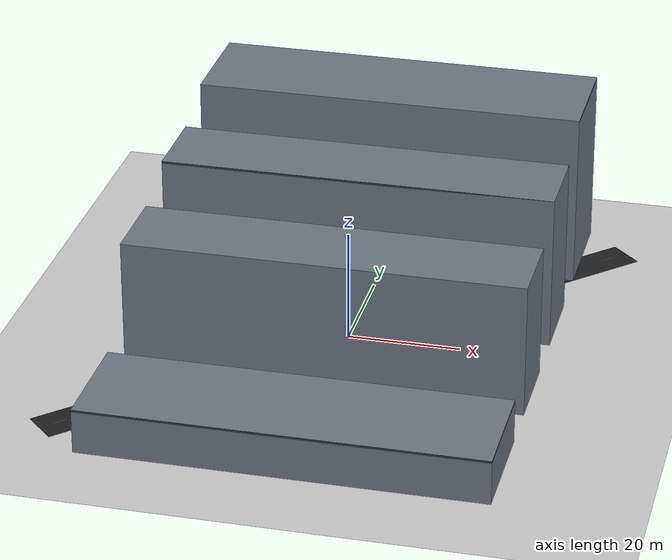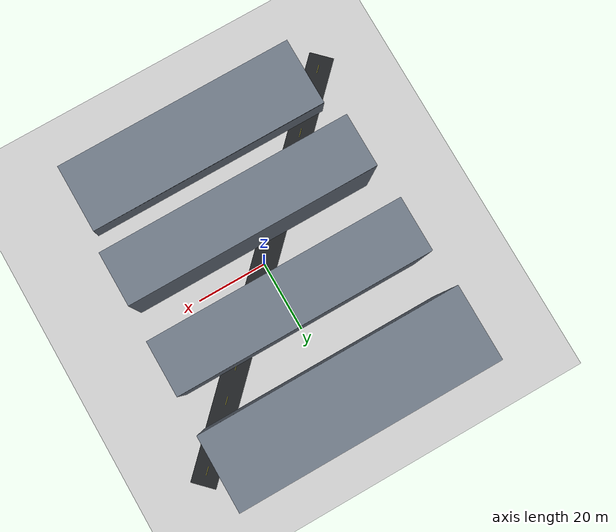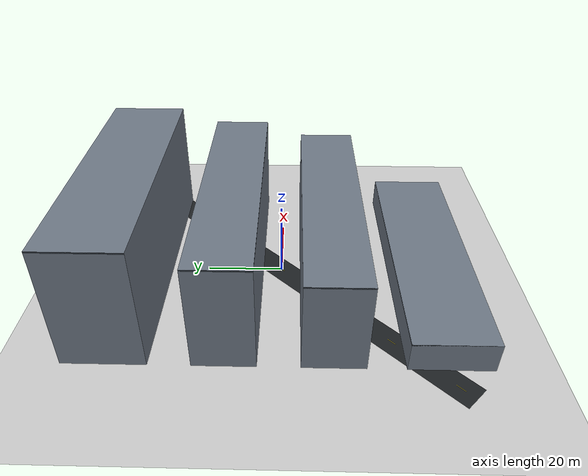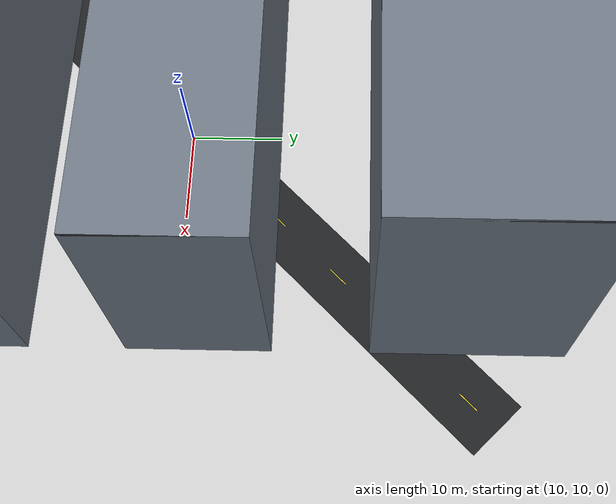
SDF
<?xml version="1.0"?>
<sdf version="1.6"><world name="logistics_1_high_rise_delivery">
  <physics name="default_physics" type="ode"><max_step_size>0.004</max_step_size><real_time_factor>1</real_time_factor><real_time_update_rate>250</real_time_update_rate><magnetic_field>6.0e-6 2.3e-5 -4.2e-5</magnetic_field></physics>
  <gravity>0 0 -9.8066</gravity>
  <include><uri>model://sun</uri></include>
  <include><uri>model://ground_plane</uri></include>
  <spherical_coordinates><surface_model>EARTH_WGS84</surface_model><latitude_deg>47.397742</latitude_deg><longitude_deg>8.545594</longitude_deg><elevation>488</elevation><heading_deg>0</heading_deg></spherical_coordinates>
<model name="service_road"><static>true</static><pose>0.000 0.000 0.012 0.000 0.000 0.785</pose><link name="link"><visual name="visual"><cast_shadows>false</cast_shadows><geometry><box><size>121.137 7.0 0.02</size></box></geometry><material><ambient>0.12 0.13 0.14 1</ambient><diffuse>0.12 0.13 0.14 1</diffuse></material></visual></link></model>
<model name="road_mark_00"><static>true</static><pose>-40.000 -40.000 0.026 0.000 0.000 0.785</pose><link name="link"><visual name="visual"><cast_shadows>false</cast_shadows><geometry><box><size>2.4 0.12 0.012</size></box></geometry><material><ambient>0.92 0.84 0.18 1</ambient><diffuse>0.92 0.84 0.18 1</diffuse></material></visual></link></model>
<model name="road_mark_01"><static>true</static><pose>-33.333 -33.333 0.026 0.000 0.000 0.785</pose><link name="link"><visual name="visual"><cast_shadows>false</cast_shadows><geometry><box><size>2.4 0.12 0.012</size></box></geometry><material><ambient>0.92 0.84 0.18 1</ambient><diffuse>0.92 0.84 0.18 1</diffuse></material></visual></link></model>
<model name="road_mark_02"><static>true</static><pose>-26.667 -26.667 0.026 0.000 0.000 0.785</pose><link name="link"><visual name="visual"><cast_shadows>false</cast_shadows><geometry><box><size>2.4 0.12 0.012</size></box></geometry><material><ambient>0.92 0.84 0.18 1</ambient><diffuse>0.92 0.84 0.18 1</diffuse></material></visual></link></model>
<model name="road_mark_03"><static>true</static><pose>-20.000 -20.000 0.026 0.000 0.000 0.785</pose><link name="link"><visual name="visual"><cast_shadows>false</cast_shadows><geometry><box><size>2.4 0.12 0.012</size></box></geometry><material><ambient>0.92 0.84 0.18 1</ambient><diffuse>0.92 0.84 0.18 1</diffuse></material></visual></link></model>
<model name="road_mark_04"><static>true</static><pose>-13.333 -13.333 0.026 0.000 0.000 0.785</pose><link name="link"><visual name="visual"><cast_shadows>false</cast_shadows><geometry><box><size>2.4 0.12 0.012</size></box></geometry><material><ambient>0.92 0.84 0.18 1</ambient><diffuse>0.92 0.84 0.18 1</diffuse></material></visual></link></model>
<model name="road_mark_05"><static>true</static><pose>-6.667 -6.667 0.026 0.000 0.000 0.785</pose><link name="link"><visual name="visual"><cast_shadows>false</cast_shadows><geometry><box><size>2.4 0.12 0.012</size></box></geometry><material><ambient>0.92 0.84 0.18 1</ambient><diffuse>0.92 0.84 0.18 1</diffuse></material></visual></link></model>
<model name="road_mark_06"><static>true</static><pose>0.000 0.000 0.026 0.000 0.000 0.785</pose><link name="link"><visual name="visual"><cast_shadows>false</cast_shadows><geometry><box><size>2.4 0.12 0.012</size></box></geometry><material><ambient>0.92 0.84 0.18 1</ambient><diffuse>0.92 0.84 0.18 1</diffuse></material></visual></link></model>
<model name="road_mark_07"><static>true</static><pose>6.667 6.667 0.026 0.000 0.000 0.785</pose><link name="link"><visual name="visual"><cast_shadows>false</cast_shadows><geometry><box><size>2.4 0.12 0.012</size></box></geometry><material><ambient>0.92 0.84 0.18 1</ambient><diffuse>0.92 0.84 0.18 1</diffuse></material></visual></link></model>
<model name="road_mark_08"><static>true</static><pose>13.333 13.333 0.026 0.000 0.000 0.785</pose><link name="link"><visual name="visual"><cast_shadows>false</cast_shadows><geometry><box><size>2.4 0.12 0.012</size></box></geometry><material><ambient>0.92 0.84 0.18 1</ambient><diffuse>0.92 0.84 0.18 1</diffuse></material></visual></link></model>
<model name="road_mark_09"><static>true</static><pose>20.000 20.000 0.026 0.000 0.000 0.785</pose><link name="link"><visual name="visual"><cast_shadows>false</cast_shadows><geometry><box><size>2.4 0.12 0.012</size></box></geometry><material><ambient>0.92 0.84 0.18 1</ambient><diffuse>0.92 0.84 0.18 1</diffuse></material></visual></link></model>
<model name="road_mark_10"><static>true</static><pose>26.667 26.667 0.026 0.000 0.000 0.785</pose><link name="link"><visual name="visual"><cast_shadows>false</cast_shadows><geometry><box><size>2.4 0.12 0.012</size></box></geometry><material><ambient>0.92 0.84 0.18 1</ambient><diffuse>0.92 0.84 0.18 1</diffuse></material></visual></link></model>
<model name="road_mark_11"><static>true</static><pose>33.333 33.333 0.026 0.000 0.000 0.785</pose><link name="link"><visual name="visual"><cast_shadows>false</cast_shadows><geometry><box><size>2.4 0.12 0.012</size></box></geometry><material><ambient>0.92 0.84 0.18 1</ambient><diffuse>0.92 0.84 0.18 1</diffuse></material></visual></link></model>
<model name="road_mark_12"><static>true</static><pose>40.000 40.000 0.026 0.000 0.000 0.785</pose><link name="link"><visual name="visual"><cast_shadows>false</cast_shadows><geometry><box><size>2.4 0.12 0.012</size></box></geometry><material><ambient>0.92 0.84 0.18 1</ambient><diffuse>0.92 0.84 0.18 1</diffuse></material></visual></link></model>
<model name="obstacle_00_tower_a"><static>true</static><pose>0.000 40.000 16.000 0 0 0</pose><link name="link"><collision name="collision"><geometry><box><size>70.000 20.000 32.000</size></box></geometry></collision><visual name="visual"><geometry><box><size>70.000 20.000 32.000</size></box></geometry><material><ambient>0.43 0.47 0.52 1</ambient><diffuse>0.43 0.47 0.52 1</diffuse></material></visual></link></model>
<model name="obstacle_00_tower_a_roof"><static>true</static><pose>0.000 40.000 31.820 0.000 0.000 0.000</pose><link name="link"><visual name="visual"><cast_shadows>false</cast_shadows><geometry><box><size>70.000 20.000 0.360</size></box></geometry><material><ambient>0.20 0.23 0.27 1</ambient><diffuse>0.20 0.23 0.27 1</diffuse></material></visual></link></model>
<model name="obstacle_01_tower_b"><static>true</static><pose>0.000 12.500 14.000 0 0 0</pose><link name="link"><collision name="collision"><geometry><box><size>70.000 15.000 28.000</size></box></geometry></collision><visual name="visual"><geometry><box><size>70.000 15.000 28.000</size></box></geometry><material><ambient>0.43 0.47 0.52 1</ambient><diffuse>0.43 0.47 0.52 1</diffuse></material></visual></link></model>
<model name="obstacle_01_tower_b_roof"><static>true</static><pose>0.000 12.500 27.820 0.000 0.000 0.000</pose><link name="link"><visual name="visual"><cast_shadows>false</cast_shadows><geometry><box><size>70.000 15.000 0.360</size></box></geometry><material><ambient>0.20 0.23 0.27 1</ambient><diffuse>0.20 0.23 0.27 1</diffuse></material></visual></link></model>
<model name="obstacle_02_tower_c"><static>true</static><pose>0.000 -12.500 12.000 0 0 0</pose><link name="link"><collision name="collision"><geometry><box><size>70.000 15.000 24.000</size></box></geometry></collision><visual name="visual"><geometry><box><size>70.000 15.000 24.000</size></box></geometry><material><ambient>0.43 0.47 0.52 1</ambient><diffuse>0.43 0.47 0.52 1</diffuse></material></visual></link></model>
<model name="obstacle_02_tower_c_roof"><static>true</static><pose>0.000 -12.500 23.820 0.000 0.000 0.000</pose><link name="link"><visual name="visual"><cast_shadows>false</cast_shadows><geometry><box><size>70.000 15.000 0.360</size></box></geometry><material><ambient>0.20 0.23 0.27 1</ambient><diffuse>0.20 0.23 0.27 1</diffuse></material></visual></link></model>
<model name="obstacle_03_podium"><static>true</static><pose>0.000 -39.000 4.000 0 0 0</pose><link name="link"><collision name="collision"><geometry><box><size>70.000 20.000 8.000</size></box></geometry></collision><visual name="visual"><geometry><box><size>70.000 20.000 8.000</size></box></geometry><material><ambient>0.43 0.47 0.52 1</ambient><diffuse>0.43 0.47 0.52 1</diffuse></material></visual></link></model>
<model name="obstacle_03_podium_roof"><static>true</static><pose>0.000 -39.000 7.820 0.000 0.000 0.000</pose><link name="link"><visual name="visual"><cast_shadows>false</cast_shadows><geometry><box><size>70.000 20.000 0.360</size></box></geometry><material><ambient>0.20 0.23 0.27 1</ambient><diffuse>0.20 0.23 0.27 1</diffuse></material></visual></link></model>
<model name="start_zone"><static>true</static><pose>-40.000 -40.000 -0.009 0 0 0</pose><link name="link"><visual name="visual"><cast_shadows>false</cast_shadows><geometry><cylinder><radius>1.5</radius><length>0.02</length></cylinder></geometry><material><ambient>0.1 0.8 0.1 1</ambient><diffuse>0.1 0.8 0.1 1</diffuse></material></visual></link></model>
<model name="goal_zone"><static>true</static><pose>40.000 40.000 -0.009 0 0 0</pose><link name="link"><visual name="visual"><cast_shadows>false</cast_shadows><geometry><cylinder><radius>1.5</radius><length>0.02</length></cylinder></geometry><material><ambient>0.9 0.15 0.1 1</ambient><diffuse>0.9 0.15 0.1 1</diffuse></material></visual></link></model>
</world></sdf>
